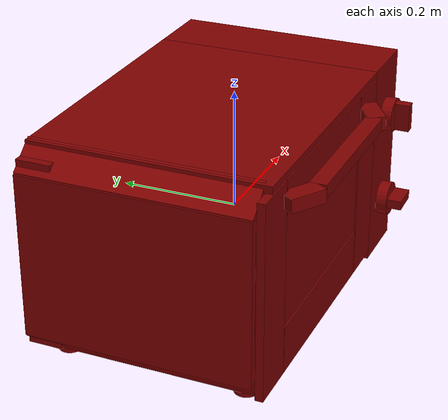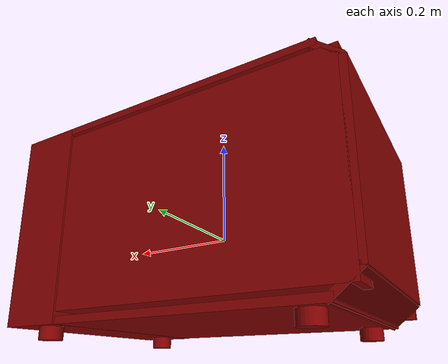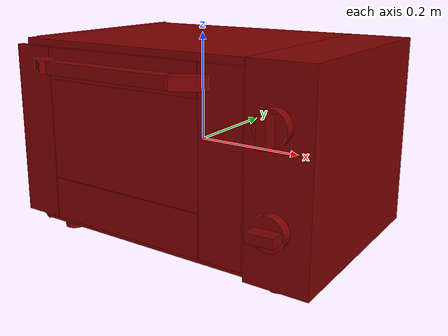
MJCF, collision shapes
<?xml version='1.0' encoding='UTF-8'?>
<mujoco model="model">
  <compiler angle="radian"/>
  <asset>
    <mesh file="visuals/Body001.obj" name="Body001_vis"/>
    <mesh file="visuals/Door001.obj" name="Door001_vis"/>
    <mesh file="visuals/Door001_Clear.obj" name="Door001_Clear_vis"/>
    <mesh file="visuals/Knob001.obj" name="Knob001_vis"/>
    <mesh file="visuals/Knob002.obj" name="Knob002_vis"/>
    <mesh file="visuals/Shelf001.obj" name="Shelf001_vis"/>
    <mesh file="visuals/Shelf002.obj" name="Shelf002_vis"/>
    <texture file="visuals/T_BC001.png" name="Body001_material" type="2d"/>
    <material name="Body001_material" rgba="1 1 1 1.0" texture="Body001_material" shininess="0.5863645374774933" specular="2"/>
    <texture file="visuals/T_BC001.png" name="Door001_material" type="2d"/>
    <material name="Door001_material" rgba="1 1 1 1.0" texture="Door001_material" shininess="0.5863645374774933" specular="1"/>
    <texture file="visuals/T_BC001.png" name="Door001_Clear_material" type="2d"/>
    <material name="Door001_Clear_material" rgba="1 1 1 0.800000011920929" texture="Door001_Clear_material" shininess="0.5863645374774933" specular="0.3103448502657381"/>
    <texture file="visuals/T_BC001.png" name="Knob001_material" type="2d"/>
    <material name="Knob001_material" rgba="1 1 1 1.0" texture="Knob001_material" shininess="0.5863645374774933" specular="0.3103448502657381"/>
    <texture file="visuals/T_BC001.png" name="Knob002_material" type="2d"/>
    <material name="Knob002_material" rgba="1 1 1 1.0" texture="Knob002_material" shininess="0.5863645374774933" specular="0.3103448502657381"/>
    <texture file="visuals/T_BC001.png" name="Shelf001_material" type="2d"/>
    <material name="Shelf001_material" rgba="1 1 1 1.0" texture="Shelf001_material" shininess="0.5863645374774933" specular="2"/>
    <texture file="visuals/T_BC001.png" name="Shelf002_material" type="2d"/>
    <material name="Shelf002_material" rgba="1 1 1 1.0" texture="Shelf002_material" shininess="0.5863645374774933" specular="2"/>
  </asset>
  <default>
    <default class="visual">
      <geom conaffinity="0" contype="0" group="1" type="mesh"/>
    </default>
    <default class="collision">
      <geom group="0" rgba="0.5 0 0 0.5"/>
    </default>
    <default class="spawn">
      <geom group="0" rgba="1 1 1 0.5" contype="0" conaffinity="0"/>
      <site group="0" rgba="1 1 1 0.5"/>
    </default>
    <default class="region">
      <geom group="1" conaffinity="0" contype="0" rgba="0 1 0 0"/>
    </default>
  </default>
  <worldbody>
    <body>
      <body name="object">
        <geom mesh="Body001_vis" type="mesh" solimp="0.998 0.998 0.001" solref="0.001 1" density="100" friction="0.95 0.3 0.1" class="visual" material="Body001_material"/>
        <geom class="collision" type="box" pos="0.254049 0.023312 0.012220" size="0.057651083916425705 0.19725219905376434 0.17778943479061127" quat="1.0 0.0 0.0 0.0"/>
        <geom class="collision" type="box" pos="-0.304219 0.030131 0.011651" size="0.005789006594568491 0.1904323399066925 0.1385304182767868" quat="1.0 0.0 0.0 0.0"/>
        <geom class="collision" type="box" pos="-0.037544 0.023312 0.183885" size="0.23364128172397614 0.19725219905376434 0.006124990060925484" quat="1.0 0.0 0.0 0.0"/>
        <geom class="collision" type="box" pos="-0.038379 0.030410 -0.159507" size="0.23049984872341156 0.1901540905237198 0.00647771405056119" quat="1.0 0.0 0.0 0.0"/>
        <geom class="collision" type="box" pos="-0.054110 0.191891 0.012695" size="0.24623076617717743 0.028672317042946815 0.15805135667324066" quat="1.0 0.0 0.0 0.0"/>
        <geom class="collision" type="cylinder" pos="0.234254 -0.119581 -0.177011" size="0.020263822749257088 0.011531293392181396" quat="1.0 0.0 0.0 0.0"/>
        <geom class="collision" type="cylinder" pos="0.234254 0.188656 -0.177011" size="0.020263822749257088 0.011531293392181396" quat="1.0 0.0 0.0 0.0"/>
        <geom class="collision" type="cylinder" pos="-0.230164 0.188656 -0.177011" size="0.020263822749257088 0.011531293392181396" quat="1.0 0.0 0.0 0.0"/>
        <geom class="collision" type="cylinder" pos="-0.230164 -0.119581 -0.177011" size="0.020263822749257088 0.011531293392181396" quat="1.0 0.0 0.0 0.0"/>
        <geom class="collision" type="box" pos="-0.294200 0.005206 0.063419" size="0.008700746111571789 0.13473139703273773 0.0021241067443042994" quat="1.0 0.0 0.0 0.0"/>
        <geom class="collision" type="box" pos="-0.294200 0.005206 -0.039591" size="0.008700746111571789 0.13473139703273773 0.0021241067443042994" quat="1.0 0.0 0.0 0.0"/>
        <geom class="collision" type="box" pos="0.188421 0.005206 0.063419" size="0.008700746111571789 0.13473139703273773 0.0021241067443042994" quat="1.0 0.0 0.0 0.0"/>
        <geom class="collision" type="box" pos="0.188421 0.005206 -0.039591" size="0.008700746111571789 0.13473139703273773 0.0021241067443042994" quat="1.0 0.0 0.0 0.0"/>
        <geom class="collision" type="box" pos="-0.281295 0.030131 0.168046" size="0.00578901544213295 0.1904323399066925 0.030844226479530334" quat="0.9063077569007874 0.0 0.4226182699203491 0.0"/>
        <geom class="collision" type="box" pos="-0.281295 0.030131 -0.144547" size="0.00578901544213295 0.1904323399066925 0.030844226479530334" quat="0.9063077569007874 0.0 -0.4226183593273163 0.0"/>
        <body name="Door001">
          <joint axis="1.0 0.0 0.0" pos="-0.052202 -0.163441 -0.150600" limited="true" name="Door001_joint" range="0.0 1.5707963267948966" type="hinge" damping="1" frictionloss="1" armature=".01" stiffness="1.2" springref="-0.4"/>
          <geom mesh="Door001_vis" type="mesh" solimp="0.998 0.998 0.001" solref="0.001 1" density="100" friction="0.95 0.3 0.1" class="visual" material="Door001_material"/>
          <geom class="collision" type="box" pos="0.153239 -0.168289 0.012778" size="0.041022930294275284 0.006600325461477041 0.16349175572395325" quat="1.0 0.0 0.0 0.0"/>
          <geom class="collision" type="box" pos="-0.258471 -0.168289 0.012778" size="0.041022930294275284 0.006600325461477041 0.16349175572395325" quat="1.0 0.0 0.0 0.0"/>
          <geom class="collision" type="box" pos="-0.052803 -0.168289 -0.110541" size="0.16387690603733063 0.006600325461477041 0.04017253592610359" quat="1.0 0.0 0.0 0.0"/>
          <geom class="collision" type="box" pos="-0.052803 -0.168289 0.147652" size="0.16387690603733063 0.006600325461477041 0.028883658349514008" quat="1.0 0.0 0.0 0.0"/>
          <geom class="collision" type="box" pos="-0.046235 -0.206396 0.147245" size="0.13011981546878815 0.013437379151582718 0.011193021200597286" quat="1.0 0.0 0.0 0.0"/>
          <geom class="collision" type="box" pos="0.110656 -0.193977 0.147245" size="0.03074171580374241 0.015240466222167015 0.011193021200597286" quat="0.9593562483787537 0.0 0.0 0.2821976840496063"/>
          <geom class="collision" type="box" pos="-0.204921 -0.193977 0.147245" size="0.03074171580374241 0.015240466222167015 0.011193021200597286" quat="0.9593562483787537 0.0 -0.0 -0.2821976840496063"/>
          <body name="Door001_Clear">
            <geom mesh="Door001_Clear_vis" type="mesh" solimp="0.998 0.998 0.001" solref="0.001 1" density="100" friction="0.95 0.3 0.1" class="visual" material="Door001_Clear_material"/>
            <geom class="collision" type="box" pos="-0.049730 -0.172201 0.023469" size="0.17526189982891083 0.00031763094011694193 0.0971519947052002" quat="1.0 0.0 0.0 0.0"/>
          </body>
        </body>
        <body name="Knob001">
          <joint axis="0.0 1.0 0.0" pos="0.249792 -0.193572 0.095284" limited="true" name="Knob001_joint" range="0.0 3.979350694547071" type="hinge" damping="0.05" armature="0.001"/>
          <geom mesh="Knob001_vis" type="mesh" solimp="0.998 0.998 0.001" solref="0.001 1" density="100" friction="0.95 0.3 0.1" class="visual" material="Knob001_material"/>
          <geom class="collision" type="cylinder" pos="0.249726 -0.185148 0.095258" size="0.028993062674999237 0.009548208676278591" quat="0.2779228687286377 0.2779228091239929 -0.6501991748809814 0.6501991152763367"/>
          <geom class="collision" type="box" pos="0.250619 -0.206397 0.094189" size="0.008227339945733547 0.014146728441119194 0.024297624826431274" quat="0.019935911521315575 0.0 0.9998012781143188 0.0"/>
        </body>
        <body name="Knob002">
          <joint axis="0.0 1.0 0.0" pos="0.249625 -0.193572 -0.065538" limited="true" name="Knob002_joint" range="0.0 3.2288591161895095" type="hinge" damping="0.05" armature="0.001"/>
          <geom mesh="Knob002_vis" type="mesh" solimp="0.998 0.998 0.001" solref="0.001 1" density="100" friction="0.95 0.3 0.1" class="visual" material="Knob002_material"/>
          <geom class="collision" type="cylinder" pos="0.249651 -0.185148 -0.065604" size="0.028993062674999237 0.009548208676278591" quat="0.2632390856742859 0.2632390856742859 0.6562812924385071 -0.6562813520431519"/>
          <geom class="collision" type="box" pos="0.250720 -0.206397 -0.064710" size="0.008227339945733547 0.014146728441119194 0.024297624826431274" quat="0.7210630774497986 0.0 0.6928694248199463 0.0"/>
        </body>
        <body name="Shelf001">
          <joint axis="0.0 -1.0 0.0" pos="-0.052268 0.005742 -0.047226" limited="true" name="Shelf001_joint" range="0.0 0.24" type="slide" damping="1" frictionloss="1" armature=".01" stiffness="0.05"/>
          <geom mesh="Shelf001_vis" type="mesh" solimp="0.998 0.998 0.001" solref="0.001 1" density="100" friction="0.95 0.3 0.1" class="visual" material="Shelf001_material"/>
          <geom class="collision" type="box" pos="-0.053386 0.010003 -0.032639" size="0.23939518630504608 0.15144549310207367 0.003651705337688327" quat="1.0 0.0 0.0 0.0"/>
          <geom class="collision" type="box" pos="-0.053199 -0.145598 -0.046950" size="0.2392076700925827 0.0038621220737695694 0.01796317845582962" quat="1.0 0.0 0.0 0.0"/>
        </body>
        <body name="Shelf002">
          <joint axis="0.0 -1.0 0.0" pos="-0.052268 0.006250 0.070659" limited="true" name="Shelf002_joint" range="0.0 0.24" type="slide" damping="1" frictionloss="1" armature=".01" stiffness="0.05"/>
          <geom mesh="Shelf002_vis" type="mesh" solimp="0.998 0.998 0.001" solref="0.001 1" density="100" friction="0.95 0.3 0.1" class="visual" material="Shelf002_material"/>
          <geom class="collision" type="box" pos="-0.053386 0.006127 0.070980" size="0.23939518630504608 0.1546373814344406 0.004244384355843067" quat="1.0 0.0 0.0 0.0"/>
        </body>
        <geom class="region" name="reg_main" type="box" pos="0.0 0.0219935 0.0" size="0.313201 0.1991145 0.191399"/>
        <geom class="region" name="reg_int" type="box" pos="-0.052088499999999996 0.0016375 0.0120445" size="0.2463055 0.1651335 0.1643905"/>
      </body>
    </body>
  </worldbody>
  <actuator>
    <motor name="Door001_joint_actuator" joint="Door001_joint" gear="50"/>
    <motor name="Knob001_joint_actuator" joint="Knob001_joint" gear="50"/>
    <motor name="Knob002_joint_actuator" joint="Knob002_joint" gear="50"/>
    <motor name="Shelf001_joint_actuator" joint="Shelf001_joint" gear="50"/>
    <motor name="Shelf002_joint_actuator" joint="Shelf002_joint" gear="50"/>
  </actuator>
</mujoco>
